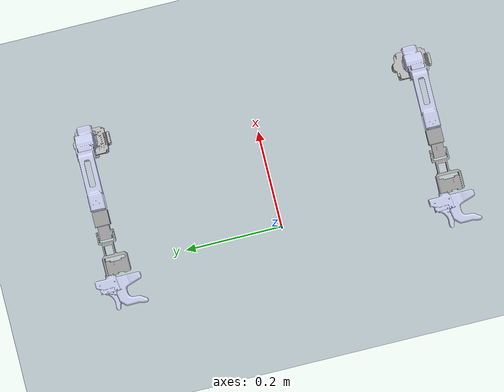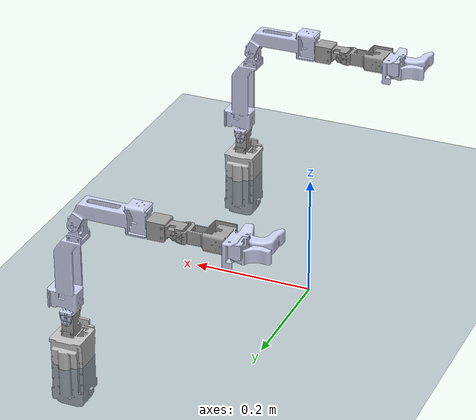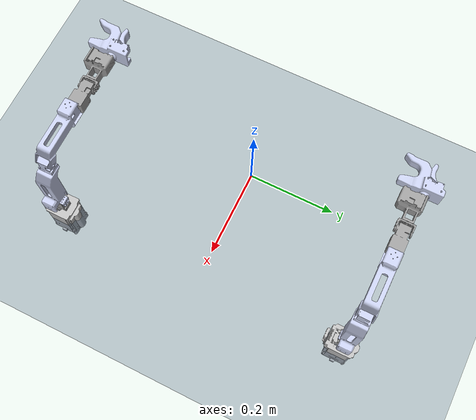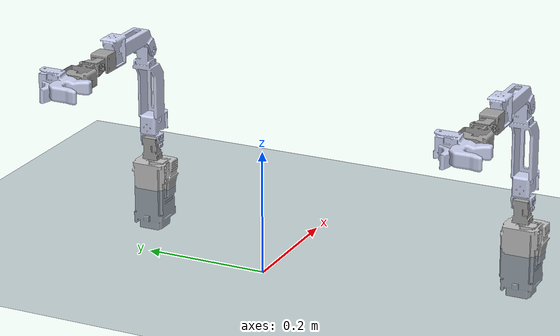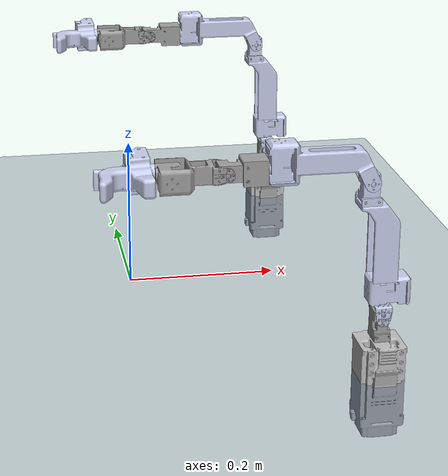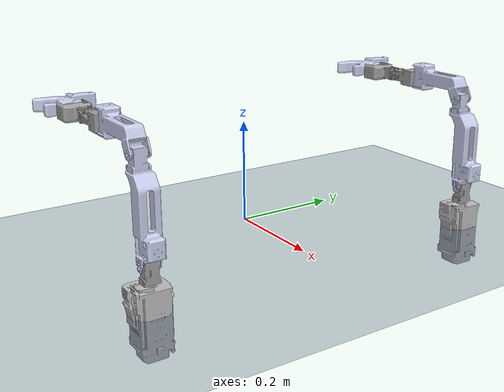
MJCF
<mujoco model="papras_7dof_leaders_table">
  <compiler angle="radian" meshdir="../"/>
  <include file="../assets/scene/floor_sky.xml" />
  <asset>
    <mesh name="base_link" file="assets/leaders/base_link.stl"/>
    <mesh name="link1" file="assets/leaders/papras_7dof/link1.stl"/>
    <mesh name="link2" file="assets/leaders/papras_7dof/link2.stl"/>
    <mesh name="link3" file="assets/leaders/papras_7dof/link3.stl"/>
    <mesh name="link4" file="assets/leaders/papras_7dof/link4.stl"/>
    <mesh name="link5" file="assets/leaders/papras_7dof/link5.stl"/>
    <mesh name="link6" file="assets/leaders/papras_7dof/link6.stl"/>
    <mesh name="handle" file="assets/leaders/handle.stl"/>
    <mesh name="trigger" file="assets/leaders/trigger.stl"/>
  </asset>
  <worldbody>
    <body name="robot1/base_link" pos="0.2599 0.33455 -0.05189">
      <inertial pos="-1.88052e-05 -0.00215271 0.0441443" quat="0.706967 -0.0205139 0.0210041 0.706636" mass="0.218377" diaginertia="0.000190447 0.000160297 9.3009e-05"/>
      <geom type="mesh" rgba="0.752941 0.752941 0.752941 1" mesh="base_link"/>
      <body name="robot1/link1" pos="-0.000125 0.0022 0.099" quat="0.707105 0.707108 0 0">
        <inertial pos="0 0.0183892 -0.000652735" quat="0.696757 0.717307 0 0" mass="0.0184621" diaginertia="2.40713e-06 2.03811e-06 1.52755e-06"/>
        <joint name="robot1/joint1" pos="0 0 0" axis="0 1 0" range="-3.14159 3.14159" actuatorfrcrange="-1 1"/>
        <geom type="mesh" rgba="0.627451 0.627451 0.627451 1" mesh="link1"/>
        <body name="robot1/link2" pos="0 0.029 0" quat="1.34924e-11 -3.67321e-06 1 -3.67321e-06">
          <inertial pos="0.000147983 0.0045132 -0.0972706" quat="0.705561 0.0450797 -0.0449981 0.70578" mass="0.0814343" diaginertia="0.000137743 0.000131497 2.25158e-05"/>
          <joint name="robot1/joint2" pos="0 0 0" axis="0 0 -1" range="-3.14159 3.14159" actuatorfrcrange="-1 1"/>
          <geom type="mesh" rgba="0.792157 0.819608 0.933333 1" mesh="link2"/>
          <body name="robot1/link3" pos="-0.0001 0.10079 0" quat="0.499998 0.5 0.5 -0.500002">
            <inertial pos="-0.0180595 -1.63628e-08 -0.0722877" quat="0.706793 -0.0210533 -0.0210533 0.706793" mass="0.0654267" diaginertia="7.99498e-05 7.51504e-05 1.61691e-05"/>
            <joint name="robot1/joint3" pos="0 0 0" axis="0 0 -1" range="-3.14159 3.14159" actuatorfrcrange="-1 1"/>
            <geom type="mesh" rgba="0.792157 0.819608 0.933333 1" mesh="link3"/>
            <body name="robot1/link4" pos="0 0.01952 -0.070988" quat="0.499998 0.5 -0.5 0.500002">
              <inertial pos="0.000447858 -0.00117108 -0.0280376" quat="0.707194 -0.0458727 0.0673133 0.702311" mass="0.0269078" diaginertia="4.47105e-06 3.94009e-06 3.46416e-06"/>
              <joint name="robot1/joint4" pos="0 0 0" axis="0 -1 0" range="-3.14159 3.14159" actuatorfrcrange="-1 1"/>
              <geom type="mesh" rgba="0.792157 0.819608 0.933333 1" mesh="link4"/>
              <body name="robot1/link5" pos="-0.01952 0 -0.12037" quat="0.707105 0 0 -0.707108">
                <inertial pos="-1.93175e-09 0.0359667 -0.00685952" quat="1 0.000366307 2.29243e-06 8.39733e-10" mass="0.0354352" diaginertia="1.04658e-05 8.94433e-06 4.68872e-06"/>
                <joint name="robot1/joint5" pos="0 0 0" axis="0 0 -1" range="-3.14159 3.14159" actuatorfrcrange="-1 1"/>
                <geom type="mesh" rgba="0.627451 0.627451 0.627451 1" mesh="link5"/>
                <body name="robot1/link6" pos="0 0 -0.0475" quat="0.707105 0 0 0.707108">
                  <inertial pos="-1.20837e-08 -0.00604745 -0.0534802" quat="1 0.000366307 2.29243e-06 8.39733e-10" mass="0.0465687" diaginertia="1.04658e-05 8.94433e-06 4.68872e-06"/>
                  <joint name="robot1/joint6" pos="0 0 0" axis="0 -1 0" range="-3.14159 3.14159" actuatorfrcrange="-1 1"/>
                  <geom type="mesh" rgba="0.627451 0.627451 0.627451 1" mesh="link6"/>
                  <body name="robot1/handle" pos="0 1e-05 -0.076464" quat="0.018558 0.705023 0.708701 -0.0184617">
                    <inertial pos="-0.0269505 -0.000444553 0.00944823" quat="0.261049 0.67125 -0.253453 0.645785" mass="0.0792319" diaginertia="5.60819e-05 4.59189e-05 2.21058e-05"/>
                    <joint name="robot1/joint7" pos="0 0 0" axis="0.052336 0 0.99863" range="-3.14159 3.14159" actuatorfrcrange="-1 1"/>
                    <geom pos="0.01 0 0" type="mesh" rgba="0.792157 0.819608 0.933333 1" mesh="handle"/>
                    <body name="robot1/end_effector_link" quat="0.500398 0.499602 -0.5 0.5">
                      <inertial pos="0 0 0" mass="0.001" diaginertia="1 1 1"/>
                    </body>
                    <body name="robot1/trigger" pos="0.0154268 0 0.0226837">
                      <inertial pos="0.00504847 0.00657609 0.0232193" quat="0.989454 0.108874 0.0494822 0.0817224" mass="0.0113374" diaginertia="2.75937e-06 2.61293e-06 6.92748e-07"/>
                      <joint name="robot1/gripper" pos="0 0 0" axis="0 -1 0" range="0 1.2" actuatorfrcrange="-1 1"/>
                      <geom type="mesh" rgba="0.792157 0.819608 0.933333 1" mesh="trigger"/>
                    </body>
                  </body>
                </body>
              </body>
            </body>
          </body>
        </body>
      </body>
    </body>
    <body name="robot2/base_link" pos="0.2601 -0.33435 -0.05189">
      <inertial pos="-1.88052e-05 -0.00215271 0.0441443" quat="0.706967 -0.0205139 0.0210041 0.706636" mass="0.218377" diaginertia="0.000190447 0.000160297 9.3009e-05"/>
      <geom type="mesh" rgba="0.752941 0.752941 0.752941 1" mesh="base_link"/>
      <body name="robot2/link1" pos="-0.000125 0.0022 0.099" quat="0.707105 0.707108 0 0">
        <inertial pos="0 0.0183892 -0.000652735" quat="0.696757 0.717307 0 0" mass="0.0184621" diaginertia="2.40713e-06 2.03811e-06 1.52755e-06"/>
        <joint name="robot2/joint1" pos="0 0 0" axis="0 1 0" range="-3.14159 3.14159" actuatorfrcrange="-1 1"/>
        <geom type="mesh" rgba="0.627451 0.627451 0.627451 1" mesh="link1"/>
        <body name="robot2/link2" pos="0 0.029 0" quat="1.34924e-11 -3.67321e-06 1 -3.67321e-06">
          <inertial pos="0.000147983 0.0045132 -0.0972706" quat="0.705561 0.0450797 -0.0449981 0.70578" mass="0.0814343" diaginertia="0.000137743 0.000131497 2.25158e-05"/>
          <joint name="robot2/joint2" pos="0 0 0" axis="0 0 -1" range="-3.14159 3.14159" actuatorfrcrange="-1 1"/>
          <geom type="mesh" rgba="0.792157 0.819608 0.933333 1" mesh="link2"/>
          <body name="robot2/link3" pos="-0.0001 0.10079 0" quat="0.499998 0.5 0.5 -0.500002">
            <inertial pos="-0.0180595 -1.63628e-08 -0.0722877" quat="0.706793 -0.0210533 -0.0210533 0.706793" mass="0.0654267" diaginertia="7.99498e-05 7.51504e-05 1.61691e-05"/>
            <joint name="robot2/joint3" pos="0 0 0" axis="0 0 -1" range="-3.14159 3.14159" actuatorfrcrange="-1 1"/>
            <geom type="mesh" rgba="0.792157 0.819608 0.933333 1" mesh="link3"/>
            <body name="robot2/link4" pos="0 0.01952 -0.070988" quat="0.499998 0.5 -0.5 0.500002">
              <inertial pos="0.000447858 -0.00117108 -0.0280376" quat="0.707194 -0.0458727 0.0673133 0.702311" mass="0.0269078" diaginertia="4.47105e-06 3.94009e-06 3.46416e-06"/>
              <joint name="robot2/joint4" pos="0 0 0" axis="0 -1 0" range="-3.14159 3.14159" actuatorfrcrange="-1 1"/>
              <geom type="mesh" rgba="0.792157 0.819608 0.933333 1" mesh="link4"/>
              <body name="robot2/link5" pos="-0.01952 0 -0.12037" quat="0.707105 0 0 -0.707108">
                <inertial pos="-1.93175e-09 0.0359667 -0.00685952" quat="1 0.000366307 2.29243e-06 8.39733e-10" mass="0.0354352" diaginertia="1.04658e-05 8.94433e-06 4.68872e-06"/>
                <joint name="robot2/joint5" pos="0 0 0" axis="0 0 -1" range="-3.14159 3.14159" actuatorfrcrange="-1 1"/>
                <geom type="mesh" rgba="0.627451 0.627451 0.627451 1" mesh="link5"/>
                <body name="robot2/link6" pos="0 0 -0.0475" quat="0.707105 0 0 0.707108">
                  <inertial pos="-1.20837e-08 -0.00604745 -0.0534802" quat="1 0.000366307 2.29243e-06 8.39733e-10" mass="0.0465687" diaginertia="1.04658e-05 8.94433e-06 4.68872e-06"/>
                  <joint name="robot2/joint6" pos="0 0 0" axis="0 -1 0" range="-3.14159 3.14159" actuatorfrcrange="-1 1"/>
                  <geom type="mesh" rgba="0.627451 0.627451 0.627451 1" mesh="link6"/>
                  <body name="robot2/handle" pos="0 1e-05 -0.076464" quat="0.018558 0.705023 0.708701 -0.0184617">
                    <inertial pos="-0.0269505 -0.000444553 0.00944823" quat="0.261049 0.67125 -0.253453 0.645785" mass="0.0792319" diaginertia="5.60819e-05 4.59189e-05 2.21058e-05"/>
                    <joint name="robot2/joint7" pos="0 0 0" axis="0.052336 0 0.99863" range="-3.14159 3.14159" actuatorfrcrange="-1 1"/>
                    <geom pos="0.01 0 0" type="mesh" rgba="0.792157 0.819608 0.933333 1" mesh="handle"/>
                    <body name="robot2/end_effector_link" quat="0.500398 0.499602 -0.5 0.5">
                      <inertial pos="0 0 0" mass="0.001" diaginertia="1 1 1"/>
                    </body>
                    <body name="robot2/trigger" pos="0.0154268 0 0.0226837">
                      <inertial pos="0.00504847 0.00657609 0.0232193" quat="0.989454 0.108874 0.0494822 0.0817224" mass="0.0113374" diaginertia="2.75937e-06 2.61293e-06 6.92748e-07"/>
                      <joint name="robot2/gripper" pos="0 0 0" axis="0 -1 0" range="0 1.2" actuatorfrcrange="-1 1"/>
                      <geom type="mesh" rgba="0.792157 0.819608 0.933333 1" mesh="trigger"/>
                    </body>
                  </body>
                </body>
              </body>
            </body>
          </body>
        </body>
      </body>
    </body>
  </worldbody>
  <contact>
    <exclude body1="robot1/base_link" body2="robot1/link1" />
    <exclude body1="robot2/base_link" body2="robot2/link1" />
  </contact>
</mujoco>

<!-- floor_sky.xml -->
<mujoco model="floor and sky">

    <!-- Haze -->
    <visual>
        <headlight diffuse="0.6 0.6 0.6" ambient="0.1 0.1 0.1" specular="0 0 0" />
        <rgba haze="0.15 0.25 0.35 1" />
        <global azimuth="120" elevation="-20" />
    </visual>

    <!-- Asset -->
    <asset>
        <!-- Sky -->
        <texture type="skybox" builtin="gradient" rgb1="0.1 0.2 0.3" rgb2="0 0 0" width="512"
            height="3072" />
        <!-- Ground -->
        <texture type="2d" name="groundplane" builtin="checker" mark="edge" rgb1="0.3 0.4 0.5"
            rgb2="0.1 0.2 0.3" markrgb="0.8 0.8 0.8" width="300" height="300" />
        <material name="groundplane" texture="groundplane" texuniform="true" texrepeat="2 2"
            reflectance="0.2" />
    </asset>

    <!-- Light and floor -->
    <worldbody>
        <light pos="0 0 3" dir="0 0 -1" directional="true" diffuse="1 1 1"/>
        <geom name="floor" size="0 0 0.05" type="plane" material="groundplane" />
    </worldbody>

</mujoco>
